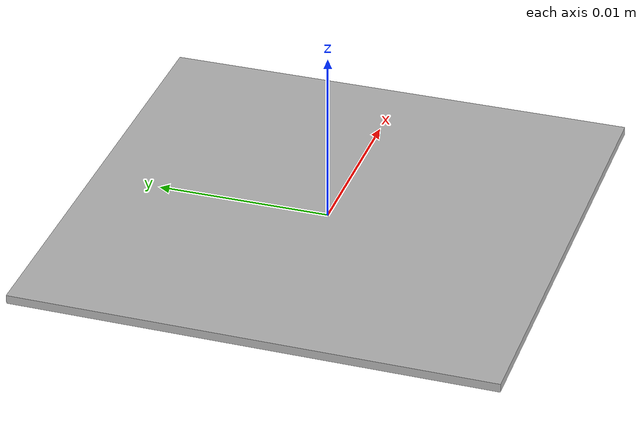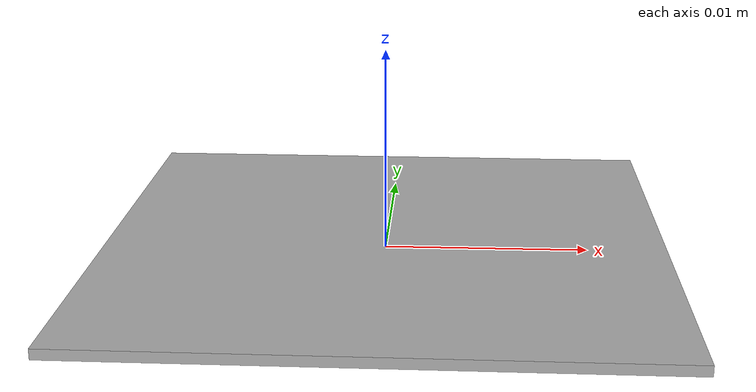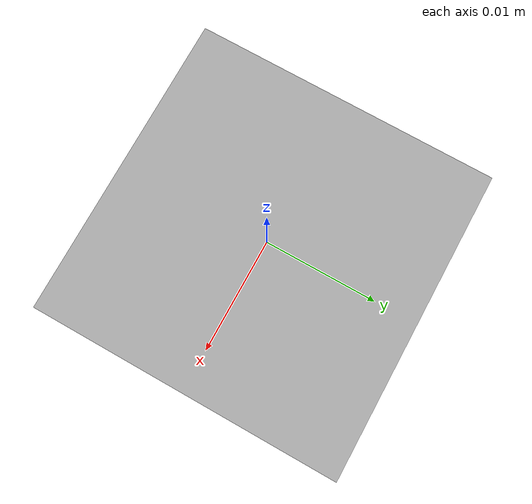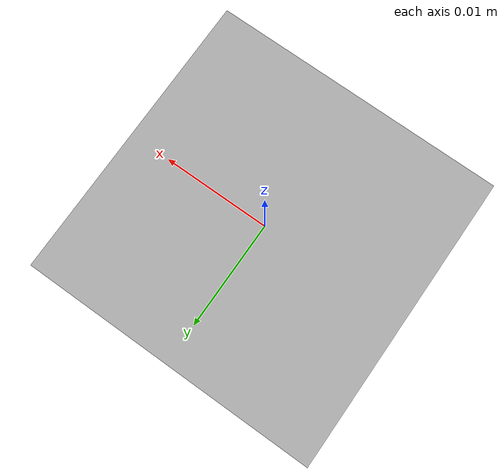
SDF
<?xml version="1.0" ?>
<sdf version="1.4">
    <model name="box">
      <pose>0 0 0 0 0 0</pose>
      <link name="link">
        <pose>0 0 0.00025 0 0 0</pose>
        <inertial>
          <mass>0.05</mass>
        </inertial>

        <collision name="collision">
          <geometry>
            <box>
              <size>0.0275 0.0275 0.0005</size>
            </box>
          </geometry>
        </collision>

        <visual name="visual">
          <geometry>
            <box>
              <size>0.0275 0.0275 0.0005</size>
            </box>
          </geometry>
        </visual>
       </link>
      <joint name = "my_mass_joint" type="prismatic">
        <parent>world</parent>
          <child>link</child>
          <axis>
            <limit>
               <lower>-1e+16</lower>
               <upper>1e+16</upper>
            </limit>
            <xyz>0 0 1</xyz>
          </axis>
      </joint>
      <plugin name="mass_joint" filename="libMassJoint.so" />
    </model>
</sdf>
